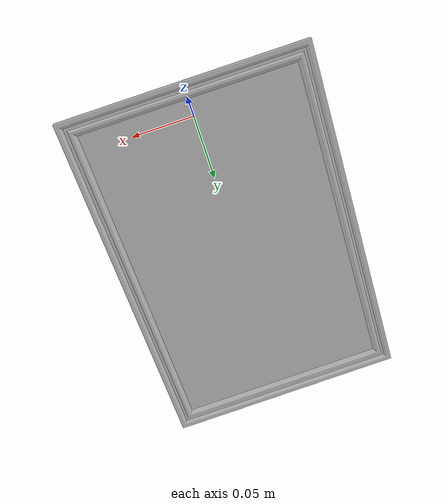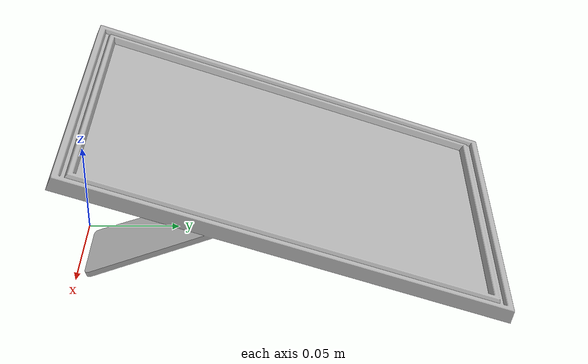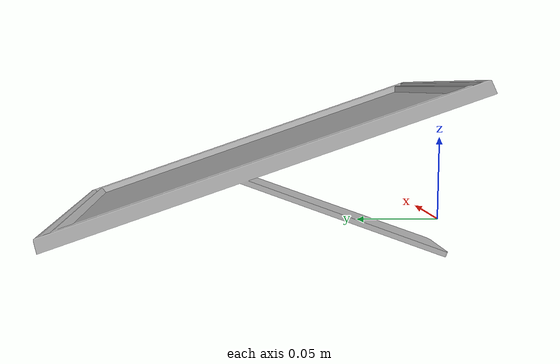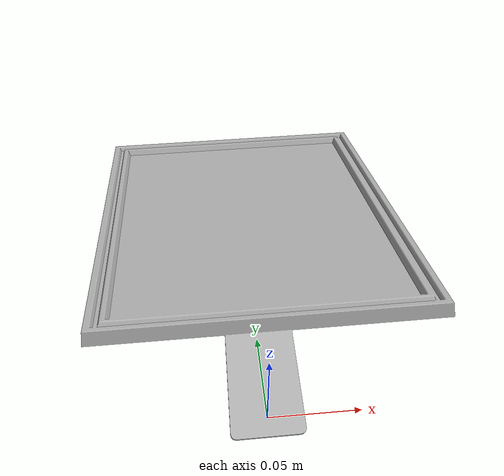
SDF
<?xml version="1.0" ?>
<sdf version="1.6">
  <model name="aws_robomaker_residential_DeskPortraitA_01">
    <link name="link">

      <inertial>
        <mass>1</mass>
        <inertia>
            <ixx>0.0835</ixx>
            <ixy>0</ixy>
            <ixz>0</ixz>
            <iyy>0.16</iyy>
            <iyz>0</iyz>
            <izz>0.08347</izz>
        </inertia>
      </inertial>

      <collision name="collision">
        <geometry>
          <mesh>
<uri>model://aws_robomaker_residential_DeskPortraitA_01/meshes/object.obj</uri>
            <scale>1 1 1</scale>
          </mesh>
        </geometry>
      </collision>

      <visual name="visual">
	    <geometry>
          <mesh>
<uri>model://aws_robomaker_residential_DeskPortraitA_01/meshes/object.obj</uri>
          </mesh>
        </geometry>
      <meta> <layer> 1 </layer></meta>
</visual>
    </link>
  </model>
</sdf>
